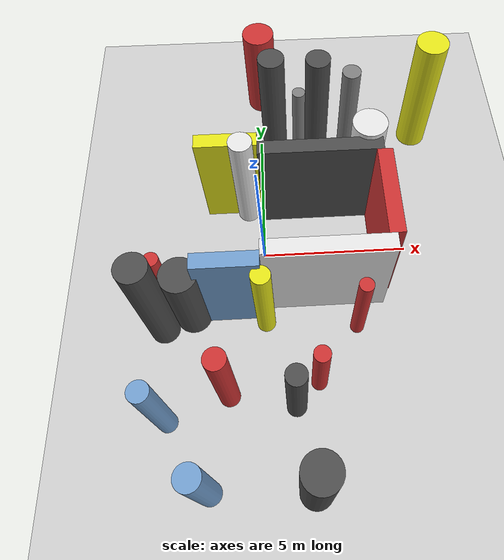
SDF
<?xml version='1.0'?>
<sdf version='1.6'>
  <world name='routeA_rl_v1__dense_recovery__rl_train__cul_de_sac_trap__000078'>
    <!-- Sun light -->
    <light name='sun' type='directional'>
      <cast_shadows>1</cast_shadows>
      <pose>0 0 10 0 0 0</pose>
      <diffuse>0.8 0.8 0.8 1</diffuse>
      <specular>0.2 0.2 0.2 1</specular>
      <attenuation>
        <range>1000</range>
        <constant>0.9</constant>
        <linear>0.01</linear>
        <quadratic>0.001</quadratic>
      </attenuation>
      <direction>-0.5 0.1 -0.9</direction>
    </light>

    <!-- Ground plane -->
    <model name='ground_plane'>
      <static>1</static>
      <link name='link'>
        <collision name='collision'>
          <geometry>
            <plane>
              <normal>0 0 1</normal>
              <size>100 100</size>
            </plane>
          </geometry>
          <surface>
            <contact>
              <collide_bitmask>65535</collide_bitmask>
              <ode/>
            </contact>
            <friction>
              <ode>
                <mu>100</mu>
                <mu2>50</mu2>
              </ode>
              <torsional><ode/></torsional>
            </friction>
            <bounce/>
          </surface>
          <max_contacts>10</max_contacts>
        </collision>
        <visual name='visual'>
          <cast_shadows>0</cast_shadows>
          <geometry>
            <plane>
              <normal>0 0 1</normal>
              <size>100 100</size>
            </plane>
          </geometry>
          <material>
            <script>
              <uri>file://media/materials/scripts/gazebo.material</uri>
              <n>Gazebo/Grey</n>
            </script>
          </material>
        </visual>
      </link>
    </model>

    <!-- Environment -->
    <magnetic_field>6e-06 2.3e-05 -4.2e-05</magnetic_field>
    <atmosphere type='adiabatic'/>
    <physics name='default_physics' default='0' type='ode'>
      <gravity>0 0 -9.8</gravity>
      <max_step_size>0.004</max_step_size>
      <real_time_factor>1</real_time_factor>
      <real_time_update_rate>250</real_time_update_rate>
    </physics>
    <scene>
      <ambient>0.4 0.4 0.4 1</ambient>
      <background>0.7 0.7 0.7 1</background>
      <shadows>1</shadows>
    </scene>
    <wind/>
    <spherical_coordinates>
      <surface_model>EARTH_WGS84</surface_model>
      <latitude_deg>0</latitude_deg>
      <longitude_deg>0</longitude_deg>
      <elevation>0</elevation>
      <heading_deg>0</heading_deg>
    </spherical_coordinates>

    <!-- ============ OBSTACLES (25) ============ -->
    <model name='trap_side_l'>
      <static>1</static>
      <link name='link'>
        <visual name='visual'>
          <geometry>
            <box>
              <size>4.0000 0.5000 4.0000</size>
            </box>
          </geometry>
          <material>
            <script>
              <n>Gazebo/White</n>
              <uri>file://media/materials/scripts/gazebo.material</uri>
            </script>
            <ambient>0.9 0.9 0.9 1</ambient>
          </material>
        </visual>
        <collision name='collision'>
          <geometry>
            <box>
              <size>4.0000 0.5000 4.0000</size>
            </box>
          </geometry>
          <max_contacts>10</max_contacts>
          <surface>
            <contact><ode/></contact>
            <bounce/>
            <friction>
              <ode><mu>1</mu><mu2>1</mu2></ode>
              <torsional><ode/></torsional>
            </friction>
          </surface>
        </collision>
      </link>
      <pose>2.0000 -1.7500 2.0000 0 0 0.0000</pose>
    </model>

    <model name='trap_side_r'>
      <static>1</static>
      <link name='link'>
        <visual name='visual'>
          <geometry>
            <box>
              <size>4.0000 0.5000 4.0000</size>
            </box>
          </geometry>
          <material>
            <script>
              <n>Gazebo/DarkGrey</n>
              <uri>file://media/materials/scripts/gazebo.material</uri>
            </script>
            <ambient>0.3 0.3 0.3 1</ambient>
          </material>
        </visual>
        <collision name='collision'>
          <geometry>
            <box>
              <size>4.0000 0.5000 4.0000</size>
            </box>
          </geometry>
          <max_contacts>10</max_contacts>
          <surface>
            <contact><ode/></contact>
            <bounce/>
            <friction>
              <ode><mu>1</mu><mu2>1</mu2></ode>
              <torsional><ode/></torsional>
            </friction>
          </surface>
        </collision>
      </link>
      <pose>2.0000 1.7500 2.0000 0 0 0.0000</pose>
    </model>

    <model name='trap_back'>
      <static>1</static>
      <link name='link'>
        <visual name='visual'>
          <geometry>
            <box>
              <size>0.5000 3.0000 4.0000</size>
            </box>
          </geometry>
          <material>
            <script>
              <n>Gazebo/Red</n>
              <uri>file://media/materials/scripts/gazebo.material</uri>
            </script>
            <ambient>0.8 0.2 0.2 1</ambient>
          </material>
        </visual>
        <collision name='collision'>
          <geometry>
            <box>
              <size>0.5000 3.0000 4.0000</size>
            </box>
          </geometry>
          <max_contacts>10</max_contacts>
          <surface>
            <contact><ode/></contact>
            <bounce/>
            <friction>
              <ode><mu>1</mu><mu2>1</mu2></ode>
              <torsional><ode/></torsional>
            </friction>
          </surface>
        </collision>
      </link>
      <pose>4.0000 0.0000 2.0000 0 0 0.0000</pose>
    </model>

    <model name='trap_funnel_l'>
      <static>1</static>
      <link name='link'>
        <visual name='visual'>
          <geometry>
            <box>
              <size>2.0000 0.5000 4.0000</size>
            </box>
          </geometry>
          <material>
            <script>
              <n>Gazebo/Blue</n>
              <uri>file://media/materials/scripts/gazebo.material</uri>
            </script>
            <ambient>0.447 0.624 0.812 1</ambient>
          </material>
        </visual>
        <collision name='collision'>
          <geometry>
            <box>
              <size>2.0000 0.5000 4.0000</size>
            </box>
          </geometry>
          <max_contacts>10</max_contacts>
          <surface>
            <contact><ode/></contact>
            <bounce/>
            <friction>
              <ode><mu>1</mu><mu2>1</mu2></ode>
              <torsional><ode/></torsional>
            </friction>
          </surface>
        </collision>
      </link>
      <pose>-1.0000 -2.1000 2.0000 0 0 0.0000</pose>
    </model>

    <model name='trap_funnel_r'>
      <static>1</static>
      <link name='link'>
        <visual name='visual'>
          <geometry>
            <box>
              <size>2.0000 0.5000 4.0000</size>
            </box>
          </geometry>
          <material>
            <script>
              <n>Gazebo/Yellow</n>
              <uri>file://media/materials/scripts/gazebo.material</uri>
            </script>
            <ambient>0.9 0.9 0.1 1</ambient>
          </material>
        </visual>
        <collision name='collision'>
          <geometry>
            <box>
              <size>2.0000 0.5000 4.0000</size>
            </box>
          </geometry>
          <max_contacts>10</max_contacts>
          <surface>
            <contact><ode/></contact>
            <bounce/>
            <friction>
              <ode><mu>1</mu><mu2>1</mu2></ode>
              <torsional><ode/></torsional>
            </friction>
          </surface>
        </collision>
      </link>
      <pose>-1.0000 2.1000 2.0000 0 0 0.0000</pose>
    </model>

    <model name='trap_scatter_0'>
      <static>1</static>
      <link name='link'>
        <visual name='visual'>
          <geometry>
            <cylinder>
              <radius>0.2280</radius>
              <length>3.4213</length>
            </cylinder>
          </geometry>
          <material>
            <script>
              <n>Gazebo/Red</n>
              <uri>file://media/materials/scripts/gazebo.material</uri>
            </script>
            <ambient>0.8 0.2 0.2 1</ambient>
          </material>
        </visual>
        <collision name='collision'>
          <geometry>
            <cylinder>
              <radius>0.2280</radius>
              <length>3.4213</length>
            </cylinder>
          </geometry>
          <max_contacts>10</max_contacts>
          <surface>
            <contact><ode/></contact>
            <bounce/>
            <friction>
              <ode><mu>1</mu><mu2>1</mu2></ode>
              <torsional><ode/></torsional>
            </friction>
          </surface>
        </collision>
      </link>
      <pose>3.0152 -2.8235 1.7107 0 0 0.0000</pose>
    </model>

    <model name='trap_scatter_1'>
      <static>1</static>
      <link name='link'>
        <visual name='visual'>
          <geometry>
            <cylinder>
              <radius>0.3908</radius>
              <length>4.1814</length>
            </cylinder>
          </geometry>
          <material>
            <script>
              <n>Gazebo/White</n>
              <uri>file://media/materials/scripts/gazebo.material</uri>
            </script>
            <ambient>0.9 0.9 0.9 1</ambient>
          </material>
        </visual>
        <collision name='collision'>
          <geometry>
            <cylinder>
              <radius>0.3908</radius>
              <length>4.1814</length>
            </cylinder>
          </geometry>
          <max_contacts>10</max_contacts>
          <surface>
            <contact><ode/></contact>
            <bounce/>
            <friction>
              <ode><mu>1</mu><mu2>1</mu2></ode>
              <torsional><ode/></torsional>
            </friction>
          </surface>
        </collision>
      </link>
      <pose>-0.5193 1.8600 2.0907 0 0 0.0000</pose>
    </model>

    <model name='trap_scatter_2'>
      <static>1</static>
      <link name='link'>
        <visual name='visual'>
          <geometry>
            <cylinder>
              <radius>0.3194</radius>
              <length>4.1494</length>
            </cylinder>
          </geometry>
          <material>
            <script>
              <n>Gazebo/Grey</n>
              <uri>file://media/materials/scripts/gazebo.material</uri>
            </script>
            <ambient>0.5 0.5 0.5 1</ambient>
          </material>
        </visual>
        <collision name='collision'>
          <geometry>
            <cylinder>
              <radius>0.3194</radius>
              <length>4.1494</length>
            </cylinder>
          </geometry>
          <max_contacts>10</max_contacts>
          <surface>
            <contact><ode/></contact>
            <bounce/>
            <friction>
              <ode><mu>1</mu><mu2>1</mu2></ode>
              <torsional><ode/></torsional>
            </friction>
          </surface>
        </collision>
      </link>
      <pose>3.2584 4.6396 2.0747 0 0 0.0000</pose>
    </model>

    <model name='trap_scatter_3'>
      <static>1</static>
      <link name='link'>
        <visual name='visual'>
          <geometry>
            <cylinder>
              <radius>0.4333</radius>
              <length>4.2892</length>
            </cylinder>
          </geometry>
          <material>
            <script>
              <n>Gazebo/DarkGrey</n>
              <uri>file://media/materials/scripts/gazebo.material</uri>
            </script>
            <ambient>0.3 0.3 0.3 1</ambient>
          </material>
        </visual>
        <collision name='collision'>
          <geometry>
            <cylinder>
              <radius>0.4333</radius>
              <length>4.2892</length>
            </cylinder>
          </geometry>
          <max_contacts>10</max_contacts>
          <surface>
            <contact><ode/></contact>
            <bounce/>
            <friction>
              <ode><mu>1</mu><mu2>1</mu2></ode>
              <torsional><ode/></torsional>
            </friction>
          </surface>
        </collision>
      </link>
      <pose>2.1550 5.1515 2.1446 0 0 0.0000</pose>
    </model>

    <model name='trap_scatter_4'>
      <static>1</static>
      <link name='link'>
        <visual name='visual'>
          <geometry>
            <cylinder>
              <radius>0.4421</radius>
              <length>4.8057</length>
            </cylinder>
          </geometry>
          <material>
            <script>
              <n>Gazebo/DarkGrey</n>
              <uri>file://media/materials/scripts/gazebo.material</uri>
            </script>
            <ambient>0.3 0.3 0.3 1</ambient>
          </material>
        </visual>
        <collision name='collision'>
          <geometry>
            <cylinder>
              <radius>0.4421</radius>
              <length>4.8057</length>
            </cylinder>
          </geometry>
          <max_contacts>10</max_contacts>
          <surface>
            <contact><ode/></contact>
            <bounce/>
            <friction>
              <ode><mu>1</mu><mu2>1</mu2></ode>
              <torsional><ode/></torsional>
            </friction>
          </surface>
        </collision>
      </link>
      <pose>0.5576 4.7130 2.4029 0 0 0.0000</pose>
    </model>

    <model name='trap_scatter_5'>
      <static>1</static>
      <link name='link'>
        <visual name='visual'>
          <geometry>
            <cylinder>
              <radius>0.2558</radius>
              <length>3.0103</length>
            </cylinder>
          </geometry>
          <material>
            <script>
              <n>Gazebo/Red</n>
              <uri>file://media/materials/scripts/gazebo.material</uri>
            </script>
            <ambient>0.8 0.2 0.2 1</ambient>
          </material>
        </visual>
        <collision name='collision'>
          <geometry>
            <cylinder>
              <radius>0.2558</radius>
              <length>3.0103</length>
            </cylinder>
          </geometry>
          <max_contacts>10</max_contacts>
          <surface>
            <contact><ode/></contact>
            <bounce/>
            <friction>
              <ode><mu>1</mu><mu2>1</mu2></ode>
              <torsional><ode/></torsional>
            </friction>
          </surface>
        </collision>
      </link>
      <pose>1.6271 -4.6347 1.5051 0 0 0.0000</pose>
    </model>

    <model name='trap_scatter_7'>
      <static>1</static>
      <link name='link'>
        <visual name='visual'>
          <geometry>
            <cylinder>
              <radius>0.5414</radius>
              <length>4.7753</length>
            </cylinder>
          </geometry>
          <material>
            <script>
              <n>Gazebo/Yellow</n>
              <uri>file://media/materials/scripts/gazebo.material</uri>
            </script>
            <ambient>0.9 0.9 0.1 1</ambient>
          </material>
        </visual>
        <collision name='collision'>
          <geometry>
            <cylinder>
              <radius>0.5414</radius>
              <length>4.7753</length>
            </cylinder>
          </geometry>
          <max_contacts>10</max_contacts>
          <surface>
            <contact><ode/></contact>
            <bounce/>
            <friction>
              <ode><mu>1</mu><mu2>1</mu2></ode>
              <torsional><ode/></torsional>
            </friction>
          </surface>
        </collision>
      </link>
      <pose>5.9682 5.1690 2.3877 0 0 0.0000</pose>
    </model>

    <model name='trap_scatter_8'>
      <static>1</static>
      <link name='link'>
        <visual name='visual'>
          <geometry>
            <cylinder>
              <radius>0.5661</radius>
              <length>3.5363</length>
            </cylinder>
          </geometry>
          <material>
            <script>
              <n>Gazebo/Red</n>
              <uri>file://media/materials/scripts/gazebo.material</uri>
            </script>
            <ambient>0.8 0.2 0.2 1</ambient>
          </material>
        </visual>
        <collision name='collision'>
          <geometry>
            <cylinder>
              <radius>0.5661</radius>
              <length>3.5363</length>
            </cylinder>
          </geometry>
          <max_contacts>10</max_contacts>
          <surface>
            <contact><ode/></contact>
            <bounce/>
            <friction>
              <ode><mu>1</mu><mu2>1</mu2></ode>
              <torsional><ode/></torsional>
            </friction>
          </surface>
        </collision>
      </link>
      <pose>0.1100 7.2938 1.7681 0 0 0.0000</pose>
    </model>

    <model name='trap_scatter_10'>
      <static>1</static>
      <link name='link'>
        <visual name='visual'>
          <geometry>
            <cylinder>
              <radius>0.5822</radius>
              <length>3.2926</length>
            </cylinder>
          </geometry>
          <material>
            <script>
              <n>Gazebo/DarkGrey</n>
              <uri>file://media/materials/scripts/gazebo.material</uri>
            </script>
            <ambient>0.3 0.3 0.3 1</ambient>
          </material>
        </visual>
        <collision name='collision'>
          <geometry>
            <cylinder>
              <radius>0.5822</radius>
              <length>3.2926</length>
            </cylinder>
          </geometry>
          <max_contacts>10</max_contacts>
          <surface>
            <contact><ode/></contact>
            <bounce/>
            <friction>
              <ode><mu>1</mu><mu2>1</mu2></ode>
              <torsional><ode/></torsional>
            </friction>
          </surface>
        </collision>
      </link>
      <pose>-2.4123 -2.1679 1.6463 0 0 0.0000</pose>
    </model>

    <model name='trap_scatter_11'>
      <static>1</static>
      <link name='link'>
        <visual name='visual'>
          <geometry>
            <cylinder>
              <radius>0.5684</radius>
              <length>4.1738</length>
            </cylinder>
          </geometry>
          <material>
            <script>
              <n>Gazebo/White</n>
              <uri>file://media/materials/scripts/gazebo.material</uri>
            </script>
            <ambient>0.9 0.9 0.9 1</ambient>
          </material>
        </visual>
        <collision name='collision'>
          <geometry>
            <cylinder>
              <radius>0.5684</radius>
              <length>4.1738</length>
            </cylinder>
          </geometry>
          <max_contacts>10</max_contacts>
          <surface>
            <contact><ode/></contact>
            <bounce/>
            <friction>
              <ode><mu>1</mu><mu2>1</mu2></ode>
              <torsional><ode/></torsional>
            </friction>
          </surface>
        </collision>
      </link>
      <pose>3.6271 2.4200 2.0869 0 0 0.0000</pose>
    </model>

    <model name='trap_scatter_12'>
      <static>1</static>
      <link name='link'>
        <visual name='visual'>
          <geometry>
            <cylinder>
              <radius>0.3154</radius>
              <length>3.6628</length>
            </cylinder>
          </geometry>
          <material>
            <script>
              <n>Gazebo/DarkGrey</n>
              <uri>file://media/materials/scripts/gazebo.material</uri>
            </script>
            <ambient>0.3 0.3 0.3 1</ambient>
          </material>
        </visual>
        <collision name='collision'>
          <geometry>
            <cylinder>
              <radius>0.3154</radius>
              <length>3.6628</length>
            </cylinder>
          </geometry>
          <max_contacts>10</max_contacts>
          <surface>
            <contact><ode/></contact>
            <bounce/>
            <friction>
              <ode><mu>1</mu><mu2>1</mu2></ode>
              <torsional><ode/></torsional>
            </friction>
          </surface>
        </collision>
      </link>
      <pose>0.8758 -5.3598 1.8314 0 0 0.0000</pose>
    </model>

    <model name='trap_scatter_13'>
      <static>1</static>
      <link name='link'>
        <visual name='visual'>
          <geometry>
            <cylinder>
              <radius>0.3546</radius>
              <length>4.0543</length>
            </cylinder>
          </geometry>
          <material>
            <script>
              <n>Gazebo/Blue</n>
              <uri>file://media/materials/scripts/gazebo.material</uri>
            </script>
            <ambient>0.447 0.624 0.812 1</ambient>
          </material>
        </visual>
        <collision name='collision'>
          <geometry>
            <cylinder>
              <radius>0.3546</radius>
              <length>4.0543</length>
            </cylinder>
          </geometry>
          <max_contacts>10</max_contacts>
          <surface>
            <contact><ode/></contact>
            <bounce/>
            <friction>
              <ode><mu>1</mu><mu2>1</mu2></ode>
              <torsional><ode/></torsional>
            </friction>
          </surface>
        </collision>
      </link>
      <pose>-1.7850 -7.7223 2.0272 0 0 0.0000</pose>
    </model>

    <model name='trap_scatter_14'>
      <static>1</static>
      <link name='link'>
        <visual name='visual'>
          <geometry>
            <cylinder>
              <radius>0.5159</radius>
              <length>4.6730</length>
            </cylinder>
          </geometry>
          <material>
            <script>
              <n>Gazebo/DarkGrey</n>
              <uri>file://media/materials/scripts/gazebo.material</uri>
            </script>
            <ambient>0.3 0.3 0.3 1</ambient>
          </material>
        </visual>
        <collision name='collision'>
          <geometry>
            <cylinder>
              <radius>0.5159</radius>
              <length>4.6730</length>
            </cylinder>
          </geometry>
          <max_contacts>10</max_contacts>
          <surface>
            <contact><ode/></contact>
            <bounce/>
            <friction>
              <ode><mu>1</mu><mu2>1</mu2></ode>
              <torsional><ode/></torsional>
            </friction>
          </surface>
        </collision>
      </link>
      <pose>1.3267 -7.8482 2.3365 0 0 0.0000</pose>
    </model>

    <model name='trap_scatter_17'>
      <static>1</static>
      <link name='link'>
        <visual name='visual'>
          <geometry>
            <cylinder>
              <radius>0.2261</radius>
              <length>3.3170</length>
            </cylinder>
          </geometry>
          <material>
            <script>
              <n>Gazebo/Grey</n>
              <uri>file://media/materials/scripts/gazebo.material</uri>
            </script>
            <ambient>0.5 0.5 0.5 1</ambient>
          </material>
        </visual>
        <collision name='collision'>
          <geometry>
            <cylinder>
              <radius>0.2261</radius>
              <length>3.3170</length>
            </cylinder>
          </geometry>
          <max_contacts>10</max_contacts>
          <surface>
            <contact><ode/></contact>
            <bounce/>
            <friction>
              <ode><mu>1</mu><mu2>1</mu2></ode>
              <torsional><ode/></torsional>
            </friction>
          </surface>
        </collision>
      </link>
      <pose>1.4587 4.5900 1.6585 0 0 0.0000</pose>
    </model>

    <model name='trap_scatter_19'>
      <static>1</static>
      <link name='link'>
        <visual name='visual'>
          <geometry>
            <cylinder>
              <radius>0.4772</radius>
              <length>4.7398</length>
            </cylinder>
          </geometry>
          <material>
            <script>
              <n>Gazebo/DarkGrey</n>
              <uri>file://media/materials/scripts/gazebo.material</uri>
            </script>
            <ambient>0.3 0.3 0.3 1</ambient>
          </material>
        </visual>
        <collision name='collision'>
          <geometry>
            <cylinder>
              <radius>0.4772</radius>
              <length>4.7398</length>
            </cylinder>
          </geometry>
          <max_contacts>10</max_contacts>
          <surface>
            <contact><ode/></contact>
            <bounce/>
            <friction>
              <ode><mu>1</mu><mu2>1</mu2></ode>
              <torsional><ode/></torsional>
            </friction>
          </surface>
        </collision>
      </link>
      <pose>-3.3605 -2.5930 2.3699 0 0 0.0000</pose>
    </model>

    <model name='trap_scatter_20'>
      <static>1</static>
      <link name='link'>
        <visual name='visual'>
          <geometry>
            <cylinder>
              <radius>0.3274</radius>
              <length>4.0122</length>
            </cylinder>
          </geometry>
          <material>
            <script>
              <n>Gazebo/Red</n>
              <uri>file://media/materials/scripts/gazebo.material</uri>
            </script>
            <ambient>0.8 0.2 0.2 1</ambient>
          </material>
        </visual>
        <collision name='collision'>
          <geometry>
            <cylinder>
              <radius>0.3274</radius>
              <length>4.0122</length>
            </cylinder>
          </geometry>
          <max_contacts>10</max_contacts>
          <surface>
            <contact><ode/></contact>
            <bounce/>
            <friction>
              <ode><mu>1</mu><mu2>1</mu2></ode>
              <torsional><ode/></torsional>
            </friction>
          </surface>
        </collision>
      </link>
      <pose>-1.2094 -4.9330 2.0061 0 0 0.0000</pose>
    </model>

    <model name='trap_scatter_21'>
      <static>1</static>
      <link name='link'>
        <visual name='visual'>
          <geometry>
            <cylinder>
              <radius>0.3047</radius>
              <length>3.9155</length>
            </cylinder>
          </geometry>
          <material>
            <script>
              <n>Gazebo/Blue</n>
              <uri>file://media/materials/scripts/gazebo.material</uri>
            </script>
            <ambient>0.447 0.624 0.812 1</ambient>
          </material>
        </visual>
        <collision name='collision'>
          <geometry>
            <cylinder>
              <radius>0.3047</radius>
              <length>3.9155</length>
            </cylinder>
          </geometry>
          <max_contacts>10</max_contacts>
          <surface>
            <contact><ode/></contact>
            <bounce/>
            <friction>
              <ode><mu>1</mu><mu2>1</mu2></ode>
              <torsional><ode/></torsional>
            </friction>
          </surface>
        </collision>
      </link>
      <pose>-3.1219 -5.6345 1.9577 0 0 0.0000</pose>
    </model>

    <model name='trap_scatter_22'>
      <static>1</static>
      <link name='link'>
        <visual name='visual'>
          <geometry>
            <cylinder>
              <radius>0.2362</radius>
              <length>3.5280</length>
            </cylinder>
          </geometry>
          <material>
            <script>
              <n>Gazebo/Red</n>
              <uri>file://media/materials/scripts/gazebo.material</uri>
            </script>
            <ambient>0.8 0.2 0.2 1</ambient>
          </material>
        </visual>
        <collision name='collision'>
          <geometry>
            <cylinder>
              <radius>0.2362</radius>
              <length>3.5280</length>
            </cylinder>
          </geometry>
          <max_contacts>10</max_contacts>
          <surface>
            <contact><ode/></contact>
            <bounce/>
            <friction>
              <ode><mu>1</mu><mu2>1</mu2></ode>
              <torsional><ode/></torsional>
            </friction>
          </surface>
        </collision>
      </link>
      <pose>-3.1693 -1.7426 1.7640 0 0 0.0000</pose>
    </model>

    <model name='trap_scatter_23'>
      <static>1</static>
      <link name='link'>
        <visual name='visual'>
          <geometry>
            <cylinder>
              <radius>0.3040</radius>
              <length>3.8052</length>
            </cylinder>
          </geometry>
          <material>
            <script>
              <n>Gazebo/Yellow</n>
              <uri>file://media/materials/scripts/gazebo.material</uri>
            </script>
            <ambient>0.9 0.9 0.1 1</ambient>
          </material>
        </visual>
        <collision name='collision'>
          <geometry>
            <cylinder>
              <radius>0.3040</radius>
              <length>3.8052</length>
            </cylinder>
          </geometry>
          <max_contacts>10</max_contacts>
          <surface>
            <contact><ode/></contact>
            <bounce/>
            <friction>
              <ode><mu>1</mu><mu2>1</mu2></ode>
              <torsional><ode/></torsional>
            </friction>
          </surface>
        </collision>
      </link>
      <pose>0.0034 -2.5399 1.9026 0 0 0.0000</pose>
    </model>

    <model name='trap_scatter_24'>
      <static>1</static>
      <link name='link'>
        <visual name='visual'>
          <geometry>
            <cylinder>
              <radius>0.2926</radius>
              <length>3.1846</length>
            </cylinder>
          </geometry>
          <material>
            <script>
              <n>Gazebo/White</n>
              <uri>file://media/materials/scripts/gazebo.material</uri>
            </script>
            <ambient>0.9 0.9 0.9 1</ambient>
          </material>
        </visual>
        <collision name='collision'>
          <geometry>
            <cylinder>
              <radius>0.2926</radius>
              <length>3.1846</length>
            </cylinder>
          </geometry>
          <max_contacts>10</max_contacts>
          <surface>
            <contact><ode/></contact>
            <bounce/>
            <friction>
              <ode><mu>1</mu><mu2>1</mu2></ode>
              <torsional><ode/></torsional>
            </friction>
          </surface>
        </collision>
      </link>
      <pose>0.4325 6.2435 1.5923 0 0 0.0000</pose>
    </model>

    <!-- GUI camera -->
    <gui fullscreen='0'>
      <camera name='user_camera'>
        <pose>-15 0 18 0 0.85 0.15</pose>
        <view_controller>orbit</view_controller>
        <projection_type>perspective</projection_type>
      </camera>
    </gui>
  </world>
</sdf>
